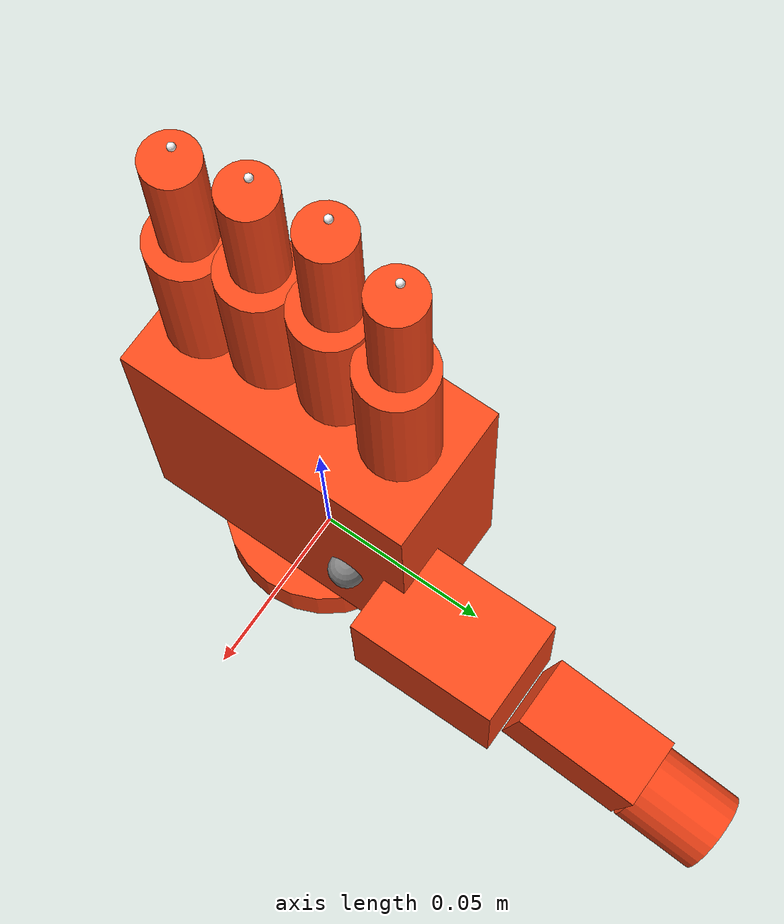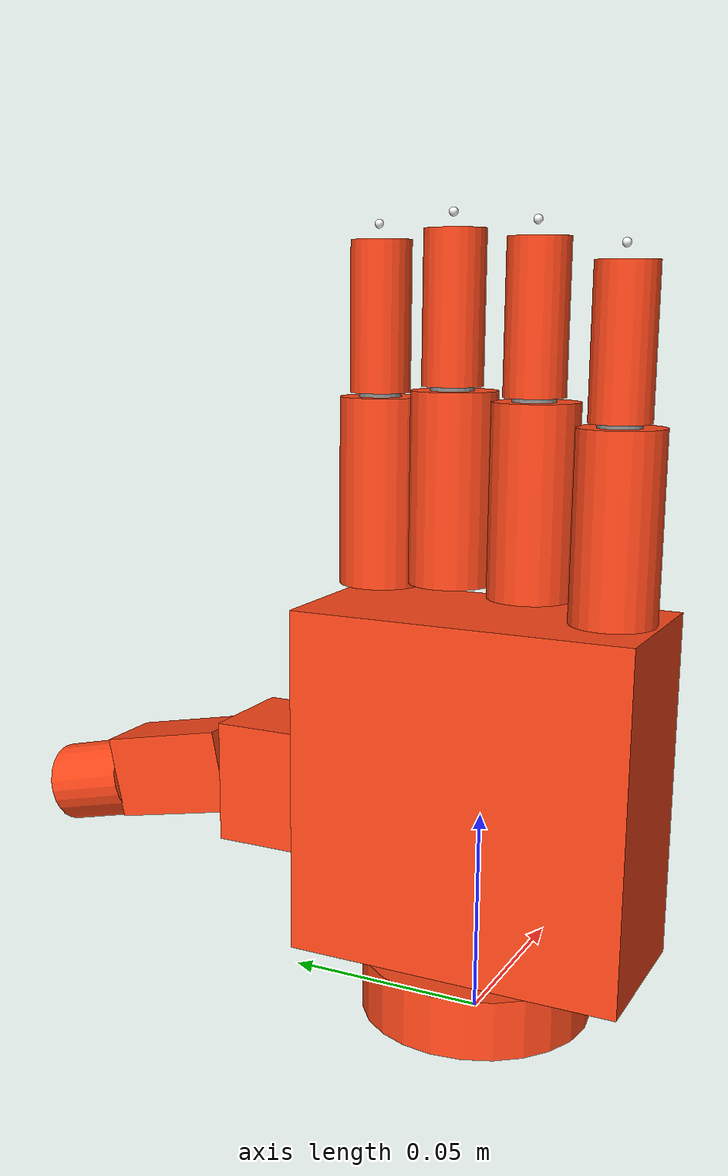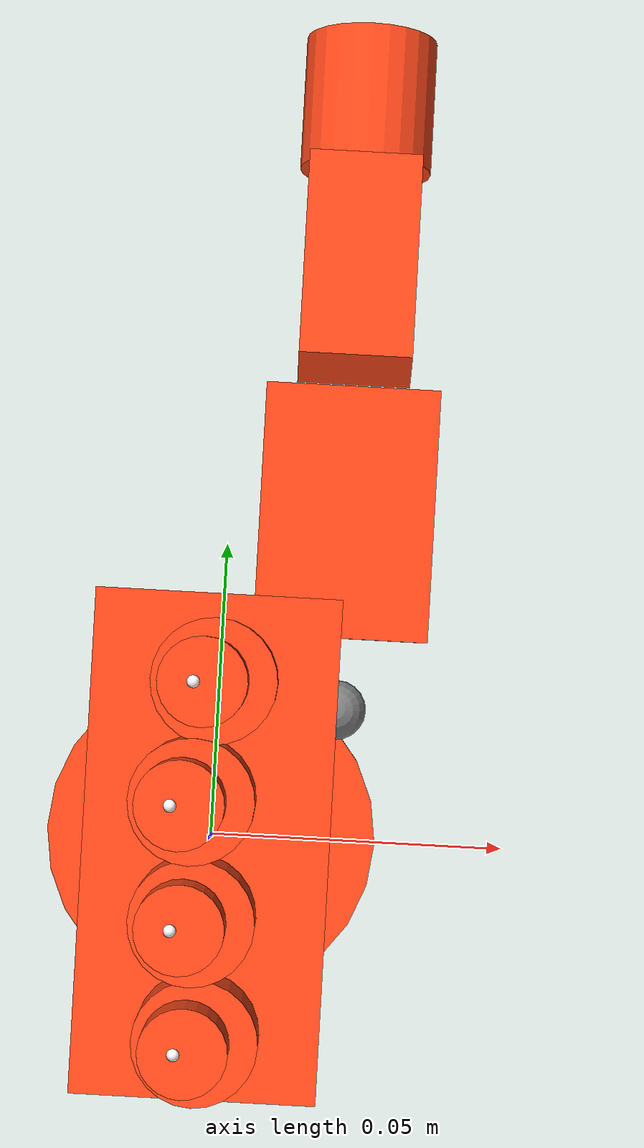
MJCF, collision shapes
<mujoco model="omnihand">
  <option gravity="0 0 0"/>
  <default>
    <default class="robot">
      <default class="motor">
        <joint damping="0.01"/>
        <motor gear="1"/>
      </default>
      <default class="visual">
        <geom material="visualgeom" contype="0" conaffinity="0" group="2" />
      </default>
      <default class="collision">
        <geom material="collision_material" condim="3" contype="0" conaffinity="1" priority="1" group="1" solref="0.005 1" solimp="0.99 0.999 1e-05" friction="1 0.01 0.01" />
      </default>
    </default>
  </default>

  <compiler angle="radian" />

  <asset>
    <material name="black" rgba="0.0 0.0 0.0 1.0" />
    <material name="blue" rgba="0.0 0.0 0.8 1.0" />
    <material name="green" rgba="0.0 0.8 0.0 1.0" />
    <material name="grey" rgba="0.2 0.2 0.2 1.0" />
    <material name="silver" rgba="0.9137254901960784 0.9137254901960784 0.8470588235294118 1.0" />
    <material name="orange" rgba="1.0 0.4235294117647059 0.0392156862745098 1.0" />
    <material name="brown" rgba="0.8705882352941177 0.8117647058823529 0.7647058823529411 1.0" />
    <material name="red" rgba="0.8 0.0 0.0 1.0" />
    <material name="white" rgba="1.0 1.0 1.0 1.0" />
    <material name="default_material" rgba="0.7 0.7 0.7 1" />
    <material name="collision_material" rgba="1.0 0.28 0.1 0.9" />
    <mesh name="r_palm.STL" file="/home/user/code/dex-retargeting/assets/robots/hands/omni_hand/meshes/r_palm.STL" />
    <mesh name="r_thumb_roll.STL" file="/home/user/code/dex-retargeting/assets/robots/hands/omni_hand/meshes/r_thumb_roll.STL" />
    <mesh name="thumb_abad.STL" file="/home/user/code/dex-retargeting/assets/robots/hands/omni_hand/meshes/thumb_abad.STL" />
    <mesh name="thumb_mcp.STL" file="/home/user/code/dex-retargeting/assets/robots/hands/omni_hand/meshes/thumb_mcp.STL" />
    <mesh name="thumb_pip.STL" file="/home/user/code/dex-retargeting/assets/robots/hands/omni_hand/meshes/thumb_pip.STL" />
    <mesh name="thumb_dip.STL" file="/home/user/code/dex-retargeting/assets/robots/hands/omni_hand/meshes/thumb_dip.STL" />
    <mesh name="finger_abad.STL" file="/home/user/code/dex-retargeting/assets/robots/hands/omni_hand/meshes/finger_abad.STL" />
    <mesh name="finger_pip.STL" file="/home/user/code/dex-retargeting/assets/robots/hands/omni_hand/meshes/finger_pip.STL" />
    <mesh name="finger_dip.STL" file="/home/user/code/dex-retargeting/assets/robots/hands/omni_hand/meshes/finger_dip.STL" />
  </asset>

  <worldbody>
    <body name="base_link" pos="0.00000000 0.00000000 0.00050000" quat="1 0 0 0" childclass="robot">
      <freejoint name="floating_base" />
      <geom name="base_link_visual" pos="0.0 0.0 0.0" quat="1.0 0.0 0.0 0.0" material="default_material" type="box" size="0.0005 0.0005 0.0005" class="visual" />
      <body name="R_palm" pos="0.0 0.0 0.0" quat="1.0 0.0 0.0 0.0">
        <inertial pos="-0.0071151 0.0044599 0.0455754" quat="1.0 0.0 0.0 0.0" mass="0.2175" diaginertia="0.00023334 0.00020584 0.00012494" />
        <geom name="R_palm_collision_0" pos="0 0 0.00725" quat="1.0 0.0 0.0 0.0" type="cylinder" size="0.028 0.00725" class="collision" />
        <geom name="R_palm_collision_1" pos="0 0 0.057" quat="1.0 0.0 0.0 0.0" type="box" size="0.02 0.041 0.0425" class="collision" />
        <geom name="R_palm_visual" pos="0 0 0" quat="1.0 0.0 0.0 0.0" material="silver" type="mesh" mesh="r_palm.STL" class="visual" />
        <body name="R_thumb_roll" pos="0 0.018529 0.046851" quat="1.0 0.0 0.0 0.0">
          <joint name="R_thumb_roll_joint" type="hinge" ref="0.0" class="motor" range="-0.17453292519943295 0.8726646259971648" axis="1 0 0" />
          <site name="R_thumb_roll_joint_site" pos="0 0 0" quat="1 0 0 0" />
          <inertial pos="0.018588 -0.0062386 0.0002106" quat="1.0 0.0 0.0 0.0" mass="0.0179" diaginertia="3.64e-06 2.68e-06 1.76e-06" />
          <geom name="R_thumb_roll_visual" pos="0 0 0" quat="1.0 0.0 0.0 0.0" material="blue" type="mesh" mesh="r_thumb_roll.STL" class="visual" />
          <body name="R_thumb_abad" pos="0.020033 0.004292 0.00075" quat="1.0 0.0 0.0 0.0">
            <joint name="R_thumb_abad_joint" type="hinge" ref="0.0" class="motor" range="-1.7453292519943295 0" axis="0 0 1" />
            <site name="R_thumb_abad_joint_site" pos="0 0 0" quat="1 0 0 0" />
            <inertial pos="0.0 0.0120925 -0.0060829" quat="1.0 0.0 0.0 0.0" mass="0.0061" diaginertia="1.21e-06 9.8e-07 6e-07" />
            <geom name="R_thumb_abad_visual" pos="0 0 0" quat="1.0 0.0 0.0 0.0" material="blue" type="mesh" mesh="thumb_abad.STL" class="visual" />
            <body name="R_thumb_mcp" pos="0 0.0265 -0.0058001" quat="1.0 0.0 0.0 0.0">
              <joint name="R_thumb_mcp_joint" type="hinge" ref="0.0" class="motor" range="0 0.8552113334772214" axis="1 0 0" />
              <site name="R_thumb_mcp_joint_site" pos="0 0 0" quat="1 0 0 0" />
              <inertial pos="-1.45e-05 0.019045 0.0020161" quat="1.0 0.0 0.0 0.0" mass="0.045" diaginertia="1.149e-05 5.16e-06 1.049e-05" />
              <geom name="R_thumb_mcp_collision" pos="0 0.0065 0.00237" quat="1.0 0.0 0.0 0.0" type="box" size="0.0145 0.021 0.01625" class="collision" />
              <geom name="R_thumb_mcp_visual" pos="0 0 0" quat="1.0 0.0 0.0 0.0" material="brown" type="mesh" mesh="thumb_mcp.STL" class="visual" />
              <body name="R_thumb_pip" pos="0 0.036229 0.0026606" quat="1.0 0.0 0.0 0.0">
                <joint name="R_thumb_pip_joint" type="hinge" ref="0.0" class="motor" range="0 1.1344640137963142" axis="1 0 0" />
                <site name="R_thumb_pip_joint_site" pos="0 0 0" quat="1 0 0 0" />
                <inertial pos="0.0004121 0.0066398 -0.0025675" quat="1.0 0.0 0.0 0.0" mass="0.0284" diaginertia="4.53e-06 2.5e-06 4e-06" />
                <geom name="R_thumb_pip_collision" pos="0 0.0116 -0.0032" quat="0.9950041652780258 -0.09983341664682815 0.0 0.0" type="box" size="0.0095 0.0175 0.01125" class="collision" />
                <geom name="R_thumb_pip_visual" pos="0 0 0" quat="1.0 0.0 0.0 0.0" material="white" type="mesh" mesh="thumb_pip.STL" class="visual" />
                <body name="R_thumb_dip" pos="0 0.026054 -0.008672" quat="1.0 0.0 0.0 0.0">
                  <joint name="R_thumb_dip_joint" type="hinge" ref="0.0" class="motor" range="0 1.1344640137963142" axis="1 0 0" />
                  <site name="R_thumb_dip_joint_site" pos="0 0 0" quat="1 0 0 0" />
                  <inertial pos="-0.0001343 0.0104003 -0.0042117" quat="1.0 0.0 0.0 0.0" mass="0.011" diaginertia="1.1e-06 7.5e-07 1.01e-06" />
                  <geom name="R_thumb_dip_collision" pos="0 0.0134 -0.0026" quat="0.6216099682706644 -0.7833269096274834 0.0 0.0" type="cylinder" size="0.011 0.0115" class="collision" />
                  <geom name="R_thumb_dip_visual" pos="0 0 0" quat="1.0 0.0 0.0 0.0" material="white" type="mesh" mesh="thumb_dip.STL" class="visual" />
                  <body name="R_thumb_tip" pos="0 0.02311 -0.01374" quat="1.0 0.0 0.0 0.0">
                    <geom name="R_thumb_tip_visual" pos="0 0 0" quat="1.0 0.0 0.0 0.0" material="white" type="sphere" size="1e-3" class="visual" />
                  </body>
                </body>
              </body>
            </body>
          </body>
        </body>
        <body name="R_index_abad" pos="-0.00069782 0.026958 0.094423" quat="1.0 0.0 0.0 0.0">
          <joint name="R_index_abad_joint" type="hinge" ref="0.0" class="motor" range="-0.20943951023931953 0" axis="1 0 0" />
          <site name="R_index_abad_joint_site" pos="0 0 0" quat="1 0 0 0" />
          <inertial pos="-0.0009337 -2.37e-05 0.0063625" quat="1.0 0.0 0.0 0.0" mass="0.0349" diaginertia="6.74e-06 7.81e-06 2.37e-06" />
          <geom name="R_index_abad_visual" pos="0 0 0" quat="1.0 0.0 0.0 0.0" material="green" type="mesh" mesh="finger_abad.STL" class="visual" />
          <body name="R_index_pip" pos="0.001025 0 0.017575" quat="1.0 0.0 0.0 0.0">
            <joint name="R_index_pip_joint" type="hinge" ref="0.0" class="motor" range="0 1.5707963267948966" axis="0 1 0" />
            <site name="R_index_pip_joint_site" pos="0 0 0" quat="1 0 0 0" />
            <inertial pos="-0.0009312 -9.8e-06 0.0120489" quat="1.0 0.0 0.0 0.0" mass="0.0125" diaginertia="3.16e-06 3.23e-06 6.3e-07" />
            <geom name="R_index_pip_collision" pos="0 0 0.014" quat="1.0 0.0 0.0 0.0" type="cylinder" size="0.01 0.022" class="collision" />
            <geom name="R_index_pip_visual" pos="0 0 0" quat="1.0 0.0 0.0 0.0" material="brown" type="mesh" mesh="finger_pip.STL" class="visual" />
            <body name="R_index_dip" pos=" -0.0014266  0 0.036" quat="1.0 0.0 0.0 0.0">
              <joint name="R_index_dip_joint" type="hinge" ref="0.0" class="motor" range="0 1.8325957145940461" axis="0 1 0" />
              <site name="R_index_dip_joint_site" pos="0 0 0" quat="1 0 0 0" />
              <inertial pos="0.0002904 4.82e-05 0.0167403" quat="1.0 0.0 0.0 0.0" mass="0.0047" diaginertia="7.6e-07 7.7e-07 1.6e-07" />
              <geom name="R_index_dip_collision" pos="0 0 0.018" quat="1.0 0.0 0.0 0.0" type="cylinder" size="0.007 0.017" class="collision" />
              <geom name="R_index_dip_visual" pos="0 0 0" quat="1.0 0.0 0.0 0.0" material="orange" type="mesh" mesh="finger_dip.STL" class="visual" />
              <body name="R_index_tip" pos="-0.00131 0 0.03841" quat="1.0 0.0 0.0 0.0">
                <geom name="R_index_tip_visual" pos="0 0 0" quat="1.0 0.0 0.0 0.0" material="white" type="sphere" size="1e-3" class="visual" />
              </body>
            </body>
          </body>
        </body>
        <body name="R_middle_abad" pos="-0.0031978 0.0079501 0.096423" quat="1.0 0.0 0.0 0.0">
          <inertial pos="-0.0009337 -2.37e-05 0.0063625" quat="1.0 0.0 0.0 0.0" mass="0.0349" diaginertia="6.74e-06 7.81e-06 2.37e-06" />
          <geom name="R_middle_abad_visual" pos="0 0 0" quat="1.0 0.0 0.0 0.0" material="green" type="mesh" mesh="finger_abad.STL" class="visual" />
          <body name="R_middle_pip" pos="0.001025 0 0.017575" quat="1.0 0.0 0.0 0.0">
            <joint name="R_middle_pip_joint" type="hinge" ref="0.0" class="motor" range="0 1.5707963267948966" axis="0 1 0" />
            <site name="R_middle_pip_joint_site" pos="0 0 0" quat="1 0 0 0" />
            <inertial pos="-0.0009312 -9.8e-06 0.0120489" quat="1.0 0.0 0.0 0.0" mass="0.0125" diaginertia="3.16e-06 3.23e-06 6.3e-07" />
            <geom name="R_middle_pip_collision" pos="0 0 0.014" quat="1.0 0.0 0.0 0.0" type="cylinder" size="0.01 0.022" class="collision" />
            <geom name="R_middle_pip_visual" pos="0 0 0" quat="1.0 0.0 0.0 0.0" material="brown" type="mesh" mesh="finger_pip.STL" class="visual" />
            <body name="R_middle_dip" pos=" -0.0014266  0 0.036" quat="1.0 0.0 0.0 0.0">
              <joint name="R_middle_dip_joint" type="hinge" ref="0.0" class="motor" range="0 1.8325957145940461" axis="0 1 0" />
              <site name="R_middle_dip_joint_site" pos="0 0 0" quat="1 0 0 0" />
              <inertial pos="0.0002904 4.82e-05 0.0167403" quat="1.0 0.0 0.0 0.0" mass="0.0047" diaginertia="7.6e-07 7.7e-07 1.6e-07" />
              <geom name="R_middle_dip_collision" pos="0 0 0.018" quat="1.0 0.0 0.0 0.0" type="cylinder" size="0.007 0.017" class="collision" />
              <geom name="R_middle_dip_visual" pos="0 0 0" quat="1.0 0.0 0.0 0.0" material="orange" type="mesh" mesh="finger_dip.STL" class="visual" />
              <body name="R_middle_tip" pos="-0.00131 0 0.03841" quat="1.0 0.0 0.0 0.0">
                <geom name="R_middle_tip_visual" pos="0 0 0" quat="1.0 0.0 0.0 0.0" material="white" type="sphere" size="1e-3" class="visual" />
              </body>
            </body>
          </body>
        </body>
        <body name="R_ring_abad" pos="-0.0021978 -0.01105 0.094423" quat="1.0 0.0 0.0 0.0">
          <joint name="R_ring_abad_joint" type="hinge" ref="0.0" class="motor" range="0 0.17453292519943295" axis="1 0 0" />
          <site name="R_ring_abad_joint_site" pos="0 0 0" quat="1 0 0 0" />
          <inertial pos="-0.0009337 -2.37e-05 0.0063625" quat="1.0 0.0 0.0 0.0" mass="0.0349" diaginertia="6.74e-06 7.81e-06 2.37e-06" />
          <geom name="R_ring_abad_visual" pos="0 0 0" quat="1.0 0.0 0.0 0.0" material="green" type="mesh" mesh="finger_abad.STL" class="visual" />
          <body name="R_ring_pip" pos="0.001025 0 0.017575" quat="1.0 0.0 0.0 0.0">
            <joint name="R_ring_pip_joint" type="hinge" ref="0.0" class="motor" range="0 1.5707963267948966" axis="0 1 0" />
            <site name="R_ring_pip_joint_site" pos="0 0 0" quat="1 0 0 0" />
            <inertial pos="-0.0009312 -9.8e-06 0.0120489" quat="1.0 0.0 0.0 0.0" mass="0.0125" diaginertia="3.16e-06 3.23e-06 6.3e-07" />
            <geom name="R_ring_pip_collision" pos="0 0 0.014" quat="1.0 0.0 0.0 0.0" type="cylinder" size="0.01 0.022" class="collision" />
            <geom name="R_ring_pip_visual" pos="0 0 0" quat="1.0 0.0 0.0 0.0" material="brown" type="mesh" mesh="finger_pip.STL" class="visual" />
            <body name="R_ring_dip" pos=" -0.0014266  0 0.036" quat="1.0 0.0 0.0 0.0">
              <joint name="R_ring_dip_joint" type="hinge" ref="0.0" class="motor" range="0 1.8325957145940461" axis="0 1 0" />
              <site name="R_ring_dip_joint_site" pos="0 0 0" quat="1 0 0 0" />
              <inertial pos="0.0002904 4.82e-05 0.0167403" quat="1.0 0.0 0.0 0.0" mass="0.0047" diaginertia="7.6e-07 7.7e-07 1.6e-07" />
              <geom name="R_ring_dip_collision" pos="0 0 0.018" quat="1.0 0.0 0.0 0.0" type="cylinder" size="0.007 0.017" class="collision" />
              <geom name="R_ring_dip_visual" pos="0 0 0" quat="1.0 0.0 0.0 0.0" material="orange" type="mesh" mesh="finger_dip.STL" class="visual" />
              <body name="R_ring_tip" pos="-0.00131 0 0.03841" quat="1.0 0.0 0.0 0.0">
                <geom name="R_ring_tip_visual" pos="0 0 0" quat="1.0 0.0 0.0 0.0" material="white" type="sphere" size="1e-3" class="visual" />
              </body>
            </body>
          </body>
        </body>
        <body name="R_pinky_abad" pos="-0.00069782 -0.03005 0.089423" quat="1.0 0.0 0.0 0.0">
          <joint name="R_pinky_abad_joint" type="hinge" ref="0.0" class="motor" range="0 0.20943951023931953" axis="1 0 0" />
          <site name="R_pinky_abad_joint_site" pos="0 0 0" quat="1 0 0 0" />
          <inertial pos="-0.0009337 -2.37e-05 0.0063625" quat="1.0 0.0 0.0 0.0" mass="0.0349" diaginertia="6.74e-06 7.81e-06 2.37e-06" />
          <geom name="R_pinky_abad_visual" pos="0 0 0" quat="1.0 0.0 0.0 0.0" material="green" type="mesh" mesh="finger_abad.STL" class="visual" />
          <body name="R_pinky_pip" pos="0.001025 0 0.017575" quat="1.0 0.0 0.0 0.0">
            <joint name="R_pinky_pip_joint" type="hinge" ref="0.0" class="motor" range="0 1.5707963267948966" axis="0 1 0" />
            <site name="R_pinky_pip_joint_site" pos="0 0 0" quat="1 0 0 0" />
            <inertial pos="-0.0009312 -9.8e-06 0.0120489" quat="1.0 0.0 0.0 0.0" mass="0.0125" diaginertia="3.16e-06 3.23e-06 6.3e-07" />
            <geom name="R_pinky_pip_collision" pos="0 0 0.014" quat="1.0 0.0 0.0 0.0" type="cylinder" size="0.01 0.022" class="collision" />
            <geom name="R_pinky_pip_visual" pos="0 0 0" quat="1.0 0.0 0.0 0.0" material="brown" type="mesh" mesh="finger_pip.STL" class="visual" />
            <body name="R_pinky_dip" pos=" -0.0014266  0 0.036" quat="1.0 0.0 0.0 0.0">
              <joint name="R_pinky_dip_joint" type="hinge" ref="0.0" class="motor" range="0 1.8325957145940461" axis="0 1 0" />
              <site name="R_pinky_dip_joint_site" pos="0 0 0" quat="1 0 0 0" />
              <inertial pos="0.0002904 4.82e-05 0.0167403" quat="1.0 0.0 0.0 0.0" mass="0.0047" diaginertia="7.6e-07 7.7e-07 1.6e-07" />
              <geom name="R_pinky_dip_collision" pos="0 0 0.018" quat="1.0 0.0 0.0 0.0" type="cylinder" size="0.007 0.017" class="collision" />
              <geom name="R_pinky_dip_visual" pos="0 0 0" quat="1.0 0.0 0.0 0.0" material="orange" type="mesh" mesh="finger_dip.STL" class="visual" />
              <body name="R_pinky_tip" pos="-0.00131 0 0.03841" quat="1.0 0.0 0.0 0.0">
                <geom name="R_pinky_tip_visual" pos="0 0 0" quat="1.0 0.0 0.0 0.0" material="white" type="sphere" size="1e-3" class="visual" />
              </body>
            </body>
          </body>
        </body>
      </body>
      <site name="base_link_site" pos="0 0 0" quat="1 0 0 0" />
      <camera name="front_camera" mode="track" fovy="90.0" quat="4.329780281177467e-17 4.329780281177466e-17 0.7071067811865475 0.7071067811865476" pos="0.0 2.0 0.5" />
      <camera name="side_camera" mode="track" fovy="90.0" quat="-0.5 -0.4999999999999999 0.5 0.5000000000000001" pos="-2.0 0.0 0.5" />
    </body>
  </worldbody>

  <actuator>
    <motor name="R_thumb_roll_joint_ctrl" joint="R_thumb_roll_joint" class="motor" />
    <motor name="R_thumb_abad_joint_ctrl" joint="R_thumb_abad_joint" class="motor" />
    <motor name="R_thumb_mcp_joint_ctrl" joint="R_thumb_mcp_joint" class="motor" />
    <motor name="R_thumb_pip_joint_ctrl" joint="R_thumb_pip_joint" class="motor" />
    <motor name="R_thumb_dip_joint_ctrl" joint="R_thumb_dip_joint" class="motor" />
    <motor name="R_index_abad_joint_ctrl" joint="R_index_abad_joint" class="motor" />
    <motor name="R_index_pip_joint_ctrl" joint="R_index_pip_joint" class="motor" />
    <motor name="R_index_dip_joint_ctrl" joint="R_index_dip_joint" class="motor" />
    <motor name="R_middle_pip_joint_ctrl" joint="R_middle_pip_joint" class="motor" />
    <motor name="R_middle_dip_joint_ctrl" joint="R_middle_dip_joint" class="motor" />
    <motor name="R_ring_abad_joint_ctrl" joint="R_ring_abad_joint" class="motor" />
    <motor name="R_ring_pip_joint_ctrl" joint="R_ring_pip_joint" class="motor" />
    <motor name="R_ring_dip_joint_ctrl" joint="R_ring_dip_joint" class="motor" />
    <motor name="R_pinky_abad_joint_ctrl" joint="R_pinky_abad_joint" class="motor" />
    <motor name="R_pinky_pip_joint_ctrl" joint="R_pinky_pip_joint" class="motor" />
    <motor name="R_pinky_dip_joint_ctrl" joint="R_pinky_dip_joint" class="motor" />
  </actuator>

  <contact>
    <exclude body1="R_thumb_mcp" body2="R_thumb_pip" />
    <exclude body1="R_thumb_pip" body2="R_thumb_dip" />
    <exclude body1="R_index_pip" body2="R_index_dip" />
    <exclude body1="R_middle_pip" body2="R_middle_dip" />
    <exclude body1="R_ring_pip" body2="R_ring_dip" />
    <exclude body1="R_pinky_pip" body2="R_pinky_dip" />
  </contact>

  <sensor>
    <framepos name="R_thumb_roll_joint_site_pos" objtype="site" objname="R_thumb_roll_joint_site" />
    <framequat name="R_thumb_roll_joint_site_quat" objtype="site" objname="R_thumb_roll_joint_site" />
    <framelinvel name="R_thumb_roll_joint_site_linvel" objtype="site" objname="R_thumb_roll_joint_site" />
    <frameangvel name="R_thumb_roll_joint_site_angvel" objtype="site" objname="R_thumb_roll_joint_site" />
    <velocimeter name="R_thumb_roll_joint_site_vel" site="R_thumb_roll_joint_site" />
  </sensor>
</mujoco>
